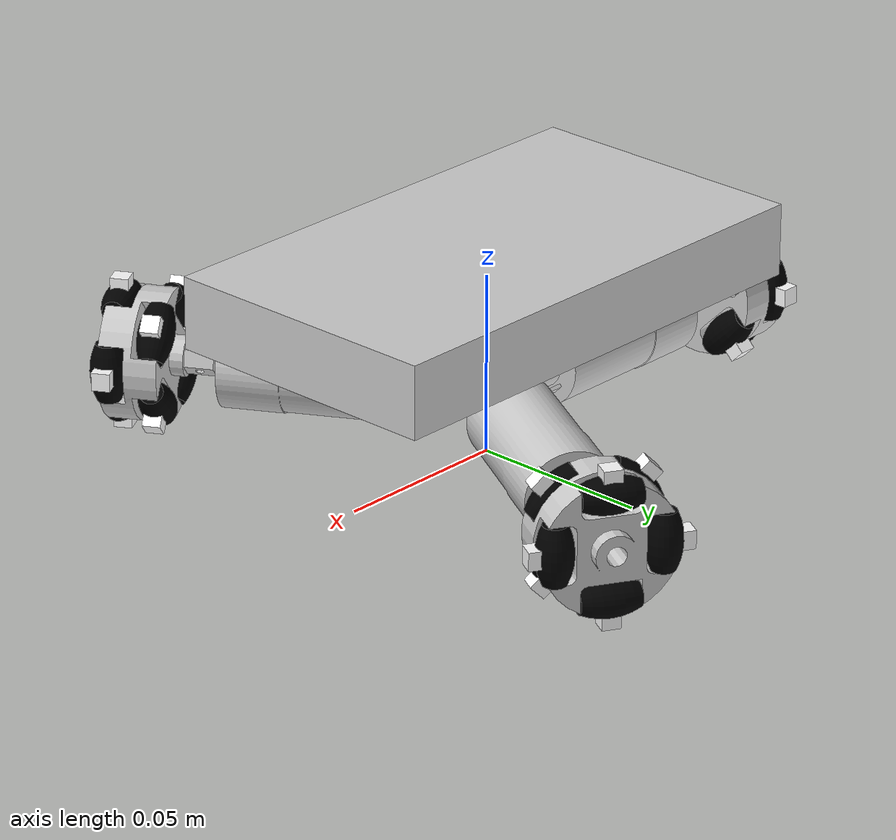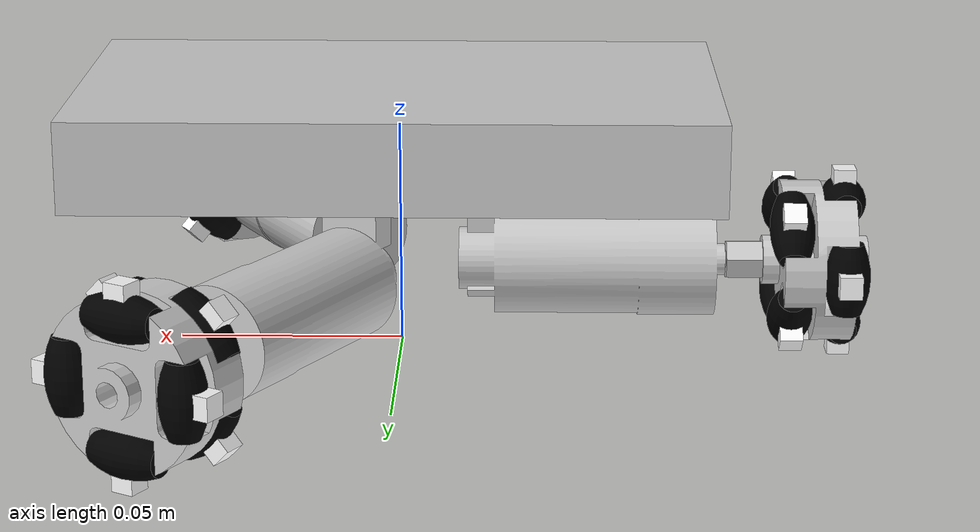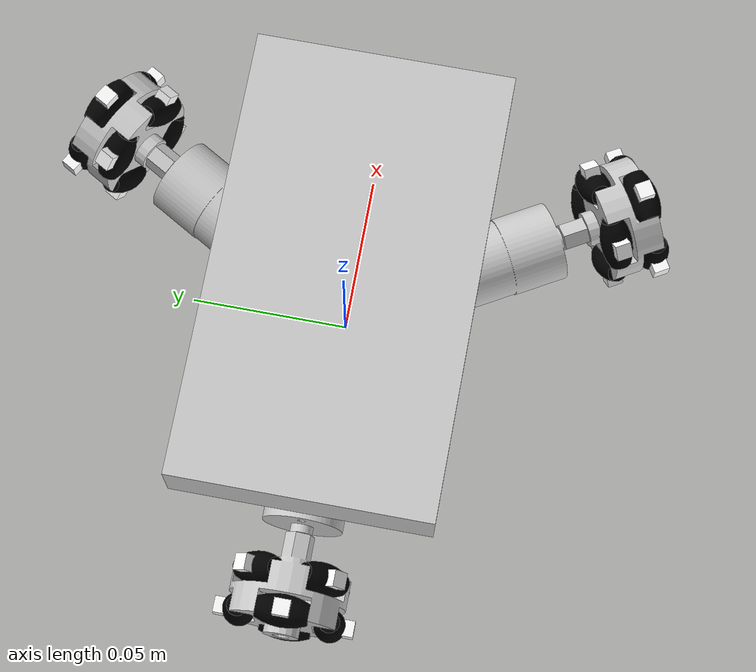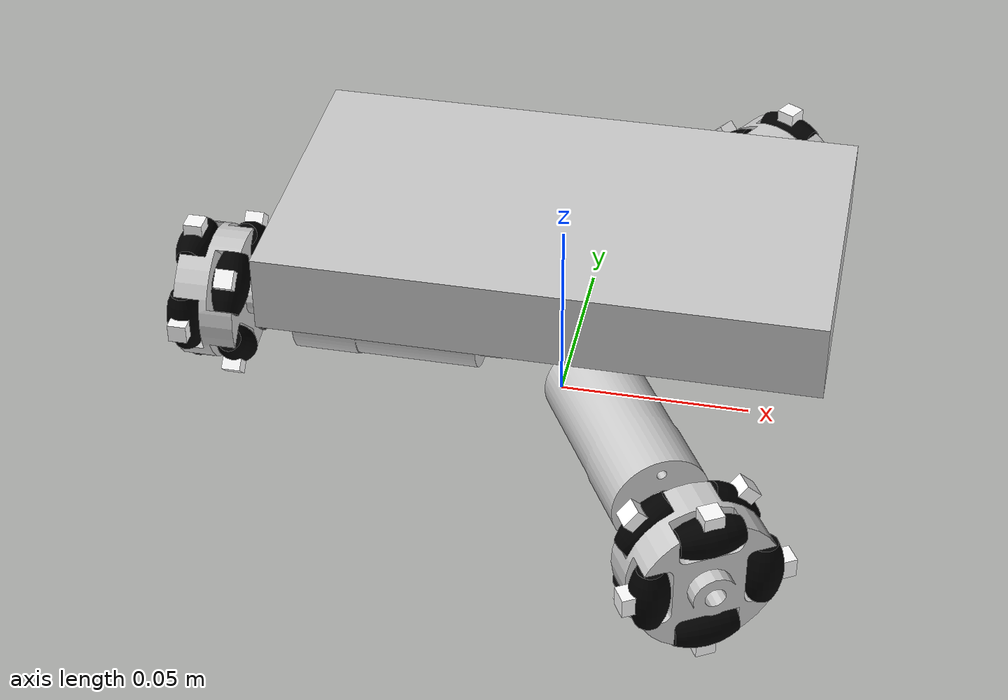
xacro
<?xml version="1.0"?>
<robot name="odm_robot" xmlns:xacro="http://ros.org/wiki/xacro">
  <xacro:include filename="$(find sim_lecture)/urdf/odm_common.xacro"/>
  <xacro:include filename="$(find sim_lecture)/urdf/odm_omni_wheel.xacro"/>

  <link name="base_link"/>

  <joint name="body_joint" type="fixed">
    <parent link="base_link"/>
    <child  link="body_link"/>
    <origin xyz="0 0 0.05" rpy="0 0 0"/>
  </joint>
  <link name="body_link">
    <visual>
      <geometry>
        <box size="0.14 0.08 0.02" />
      </geometry>
      <material name="gray"/>
    </visual>
    <collision>
      <geometry>
        <mesh filename="package://sim_lecture/stl/omni_barrel.stl" />
      </geometry>
    </collision>
    <inertial>
      <mass value="0.4"/>
      <inertia ixx="0.001" ixy="0" ixz="0" iyy="0.001" iyz="0" izz="0.001"/>
    </inertial>
  </link>

  <joint name="motor0_base_joint" type="fixed">
    <parent link="base_link"/>
    <child  link="motor0_base_link"/>
    <origin xyz="${0.07*cos(pi*1/3)} ${0.07*sin(pi*1/3)} 0.019" rpy="0 0 ${pi*1/3}"/>
  </joint>
  <link name="motor0_base_link" />

  <joint name="motor1_base_joint" type="fixed">
    <parent link="base_link"/>
    <child  link="motor1_base_link"/>
    <origin xyz="${0.07*cos(pi*3/3)} ${0.07*sin(pi*3/3)} 0.019" rpy="0 0 ${pi*3/3}"/>
  </joint>
  <link name="motor1_base_link" />

  <joint name="motor2_base_joint" type="fixed">
    <parent link="base_link"/>
    <child  link="motor2_base_link"/>
    <origin xyz="${0.07*cos(pi*5/3)} ${0.07*sin(pi*5/3)} 0.019" rpy="0 0 ${pi*5/3}"/>
  </joint>
  <link name="motor2_base_link" />

  <xacro:motor prefix="motor0" parent="motor0_base_link" />
  <joint name="wheel0_base_joint" type="fixed">
    <parent link="motor0_shaft_link"/>
    <child  link="whell0_base_link"/>
    <origin xyz="0.0105 0 0" rpy="0 ${pi/2} 0"/>
  </joint>
  <link name="whell0_base_link" />
  <xacro:omni_wheel prefix="wheel0" parent="whell0_base_link" />

  <xacro:motor prefix="motor1" parent="motor1_base_link" />
  <joint name="wheel1_base_joint" type="fixed">
    <parent link="motor1_shaft_link"/>
    <child  link="whell1_base_link"/>
    <origin xyz="0.0105 0 0" rpy="0 ${pi/2} 0"/>
  </joint>
  <link name="whell1_base_link" />
  <xacro:omni_wheel prefix="wheel1" parent="whell1_base_link" />

  <xacro:motor prefix="motor2" parent="motor2_base_link" />
  <joint name="wheel2_base_joint" type="fixed">
    <parent link="motor2_shaft_link"/>
    <child  link="whell2_base_link"/>
    <origin xyz="0.0105 0 0" rpy="0 ${pi/2} 0"/>
  </joint>
  <link name="whell2_base_link" />
  <xacro:omni_wheel prefix="wheel2" parent="whell2_base_link" />

  <!-- ===============  Gazebo =============== -->
  <gazebo>
    <plugin name="gazebo_ros_control" filename="libgazebo_ros_control.so">
      <robotNamespace>/odm_robot</robotNamespace>
    </plugin>
  </gazebo>

</robot>

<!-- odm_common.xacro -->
<robot xmlns:xacro="http://ros.org/wiki/xacro">
  <xacro:macro name="pi" params="3.1415926535897931" />
  <material name="gray">
    <color rgba="0.8 0.8 0.8 1.0"/>
  </material>
  <material name="black">
    <color rgba="0 0 0 1.0"/>
  </material>
  <material name="white">
    <color rgba="1.0 1.0 1.0 1.0"/>
  </material>
  <material name="red">
    <color rgba="1.0 0 0 1.0"/>
  </material>
  <material name="light_red">
    <color rgba="1.0 0.5 0.5 1.0"/>
  </material>
  <material name="yellow">
    <color rgba="0 1.0 1.0 1.0"/>
  </material>
</robot>

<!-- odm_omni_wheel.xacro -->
<robot xmlns:xacro="http://ros.org/wiki/xacro">
  <xacro:macro name="barrel" params="prefix parent dir">
    <joint name="${prefix}_joint" type="continuous">
      <parent link="${parent}"/>
      <child link="${prefix}_link"/>
      <origin rpy="${pi/2} 0 ${dir}" xyz="${0.014*cos(dir)} ${0.014*sin(dir)} 0.006"/>
      <axis xyz="0 0 1"/>
      <dynamics damping="0.001"/>
    </joint>
    <link name="${prefix}_link">
      <visual>
        <geometry>
          <mesh filename="package://sim_lecture/stl/omni_barrel.stl" />
        </geometry>
        <material name="black"/>
      </visual>
      <collision>
        <geometry>
          <mesh filename="package://sim_lecture/stl/omni_barrel.stl" />
        </geometry>
      </collision>
      <inertial>
        <mass value="0.001"/>
        <inertia ixx="0.0001" ixy="0" ixz="0" iyy="0.0001" iyz="0" izz="0.0001"/>
      </inertial>
    </link>
    <gazebo reference="${prefix}_link">
      <mu1 value="3.0" />
      <mu2 value="3.0" />
      <kp value="10000" />
      <kd value="100" />
      <material>Gazebo/Black</material>
    </gazebo>
    <transmission name="${prefix}_trans">
      <type>transmission_interface/SimpleTransmission</type>
      <joint name="${prefix}_joint">
        <hardwareInterface>hardware_interface/EffortJointInterface</hardwareInterface>
      </joint>
      <actuator name="${prefix}_motor">
        <hardwareInterface>hardware_interface/EffortJointInterface</hardwareInterface>
        <mechanicalReduction>1</mechanicalReduction>
      </actuator>
    </transmission>

    <joint name="${prefix}_mark_joint" type="fixed">
      <parent link="${prefix}_link"/>
      <child link="${prefix}_mark_link"/>
      <origin rpy="0 0 0" xyz="0.005 0 0"/>
    </joint>
    <link name="${prefix}_mark_link">
      <visual>
        <geometry>
          <box size="0.005 0.005 0.005"/>
        </geometry>
        <material name="white"/>
      </visual>
      <inertial>
        <mass value="0.001"/>
        <inertia ixx="0.0001" ixy="0" ixz="0" iyy="0.0001" iyz="0" izz="0.0001"/>
      </inertial>
    </link>
    <gazebo reference="${prefix}_mark_link">
      <material>Gazebo/White</material>
    </gazebo>
  </xacro:macro>

  <xacro:macro name="omni_wheel" params="prefix parent">
    <joint name="${prefix}_housing_joint" type="fixed">
      <parent link="${parent}"/>
      <child link="${prefix}_housing_link"/>
      <origin rpy="0 0 0" xyz="0 0 0"/>
    </joint>
    <link name="${prefix}_housing_link">
      <visual>
        <geometry>
          <mesh filename="package://sim_lecture/stl/omni_housing.stl" />
        </geometry>
        <origin xyz="0 0 0" rpy="0 0 0"/>
        <material name="gray"/>
      </visual>
      <inertial>
        <mass value="0.009"/>
        <inertia ixx="0.0001" ixy="0" ixz="0" iyy="0.0001" iyz="0" izz="0.0001"/>
      </inertial>
    </link>
    <gazebo reference="${prefix}_housing_link">
      <material>Gazebo/Gray</material>
    </gazebo>

    <joint name="${prefix}_housing_s_joint" type="fixed">
      <parent link="${prefix}_housing_link"/>
      <child link="${prefix}_housing_s_link"/>
      <origin rpy="0 ${pi} ${pi/4}" xyz="0 0 0"/>
    </joint>
    <link name="${prefix}_housing_s_link">
      <inertial>
        <mass value="0.001"/>
        <inertia ixx="0" ixy="0" ixz="0" iyy="0" iyz="0" izz="0.00001"/>
      </inertial>
    </link>

    <xacro:barrel prefix="${prefix}_barrel_1" parent="${prefix}_housing_link" dir="0"/>
    <xacro:barrel prefix="${prefix}_barrel_2" parent="${prefix}_housing_link" dir="${pi/2}"/>
    <xacro:barrel prefix="${prefix}_barrel_3" parent="${prefix}_housing_link" dir="${pi}"/>
    <xacro:barrel prefix="${prefix}_barrel_4" parent="${prefix}_housing_link" dir="${-pi/2}"/>
    <xacro:barrel prefix="${prefix}_barrel_5" parent="${prefix}_housing_s_link" dir="0"/>
    <xacro:barrel prefix="${prefix}_barrel_6" parent="${prefix}_housing_s_link" dir="${pi/2}"/>
    <xacro:barrel prefix="${prefix}_barrel_7" parent="${prefix}_housing_s_link" dir="${pi}"/>
    <xacro:barrel prefix="${prefix}_barrel_8" parent="${prefix}_housing_s_link" dir="${-pi/2}"/>
  </xacro:macro>

  <xacro:macro name="motor" params="prefix parent">
    <joint name="${prefix}_joint" type="fixed">
      <parent link="${parent}"/>
      <child  link="${prefix}_body_link"/>
    </joint>
    <link name="${prefix}_body_link">
      <visual>
        <geometry>
          <mesh filename="package://sim_lecture/stl/ga25_body.stl" />
        </geometry>
        <material name="gray"/>
      </visual>
      <collision>
        <geometry>
          <mesh filename="package://sim_lecture/stl/ga25_body.stl" />
        </geometry>
      </collision>
      <inertial>
        <mass value="0.150"/>
        <inertia ixx="0.001" ixy="0" ixz="0" iyy="0.001" iyz="0" izz="0.0005"/>
      </inertial>
    </link>
    <gazebo reference="${prefix}_body_link">
      <material>Gazebo/Gray</material>
    </gazebo>

    <joint name="${prefix}_shaft_joint" type="continuous">
      <parent link="${prefix}_body_link"/>
      <child  link="${prefix}_shaft_link"/>
      <origin rpy="0 0 0" xyz="0.012 0 0"/>
      <axis xyz="1 0 0"/>
      <dynamics damping="0.7"/>
    </joint>
    <transmission name="${prefix}_shaft_trans">
      <type>transmission_interface/SimpleTransmission</type>
      <joint name="${prefix}_shaft_joint">
        <hardwareInterface>hardware_interface/VelocityJointInterface</hardwareInterface>
      </joint>
      <actuator name="${prefix}_shaft_motor">
        <hardwareInterface>hardware_interface/VelocityJointInterface</hardwareInterface>
        <mechanicalReduction>1</mechanicalReduction>
      </actuator>
    </transmission>
    <link name="${prefix}_shaft_link">
      <visual>
        <geometry>
          <mesh filename="package://sim_lecture/stl/ga25_shaft.stl" />
        </geometry>
        <material name="gray"/>
      </visual>
      <inertial>
        <mass value="0.001"/>
        <inertia ixx="0.0001" ixy="0" ixz="0" iyy="0.0001" iyz="0" izz="0.0001"/>
      </inertial>
    </link>
    <gazebo reference="${prefix}_shaft_link">
      <material>Gazebo/Gray</material>
    </gazebo>
  </xacro:macro>
</robot>
